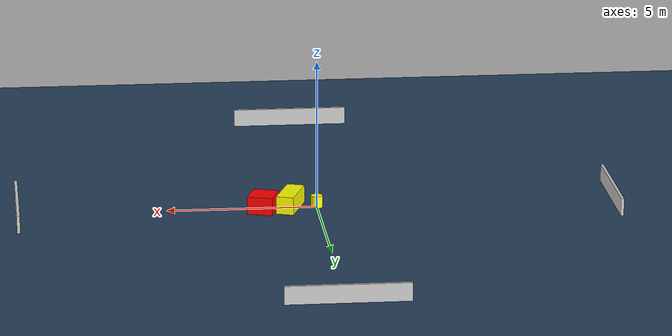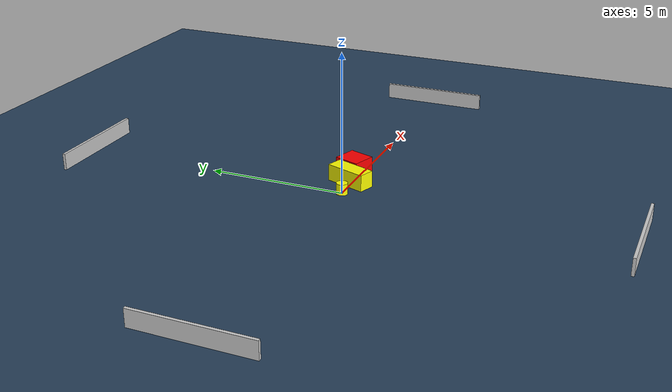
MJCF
<?xml version="1.0" ?>
<mujoco model="generated_environment">
  <option timestep="0.01" integrator="RK4" cone="elliptic"/>
  <default>
    <geom density="1"/>
  </default>
  <asset>
    <texture builtin="gradient" height="3072" name="skybox" rgb1="0.3 0.5 0.7" rgb2="0 0 0" type="skybox" width="512"/>
    <texture builtin="checker" height="300" name="groundplane" rgb1="0.2 0.3 0.4" rgb2="0.1 0.2 0.3" type="2d" width="300"/>
    <material name="groundplane" reflectance="0.2" texrepeat="5 5" texture="groundplane"/>
  </asset>
  <worldbody>
    <light dir="0 0 -1" directional="true" pos="0 0 1.5"/>
    <geom condim="3" friction="0.5 0.005 0.001" material="groundplane" name="floor" pos="0 0 0" size="0 0 0.05" type="plane"/>
    <body name="walls">
      <geom name="wall_1" condim="4" pos="-10.0 0.0 0.3" rgba="0.800000011920929 0.800000011920929 0.800000011920929 1.0" size="0.05 2.0 0.3" type="box"/>
      <geom name="wall_2" condim="4" pos="10.0 0.0 0.3" rgba="0.800000011920929 0.800000011920929 0.800000011920929 1.0" size="0.05 2.0 0.3" type="box"/>
      <geom name="wall_3" condim="4" pos="0.0 -10.0 0.3" rgba="0.800000011920929 0.800000011920929 0.800000011920929 1.0" size="2.0 0.05 0.3" type="box"/>
      <geom name="wall_4" condim="4" pos="0.0 10.0 0.3" rgba="0.800000011920929 0.800000011920929 0.800000011920929 1.0" size="2.0 0.05 0.3" type="box"/>
    </body>
    <body name="robot">
      <joint name="joint_x" type="slide" pos="0 0 0" axis="1 0 0"/>
      <joint name="joint_y" type="slide" pos="0 0 0" axis="0 1 0"/>
      <geom name="robot" type="cylinder" pos="0.0 0.0 0.2" size="0.2 0.2 0.0" mass="5.0" friction="1.0 0.005 0.0001" condim="4" rgba="1.0 1.0 0.0 1.0"/>
    </body>
    <body name="obstacle_1_movable">
      <geom name="obstacle_1_movable" condim="4" pos="0.8926038068978396 0.06538107376889404 0.3" euler="0 0 250.49872227418356" friction="0.0 0.005 0.001" rgba="1.0 1.0 0.0 1.0" size="0.7528920023090173 0.29441496270235035 0.3" type="box" mass="0.1"/>
      <joint type="free"/>
    </body>
    <body name="obstacle_2_static">
      <geom name="obstacle_2_static" condim="4" pos="1.8275803660469372 0.3041186794252259 0.3" euler="0 0 341.0122641603356" friction="0.0 0.005 0.001" rgba="1.0 0.0 0.0 1.0" size="0.43011344163497744 0.47051187945309725 0.3" type="box"/>
    </body>
  </worldbody>
  <actuator>
    <motor name="actuator_x" joint="joint_x" gear="1" ctrlrange="-1 1"/>
    <motor name="actuator_y" joint="joint_y" gear="1" ctrlrange="-1 1"/>
  </actuator>
</mujoco>
